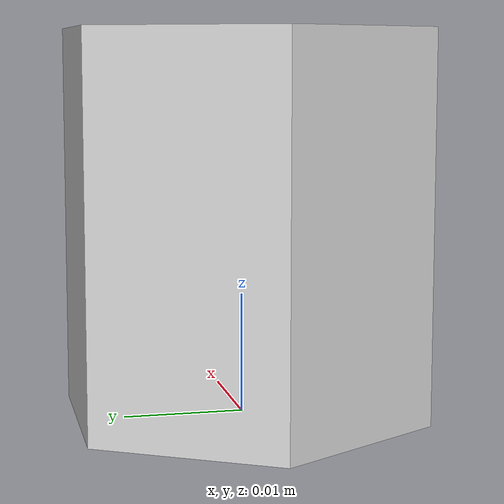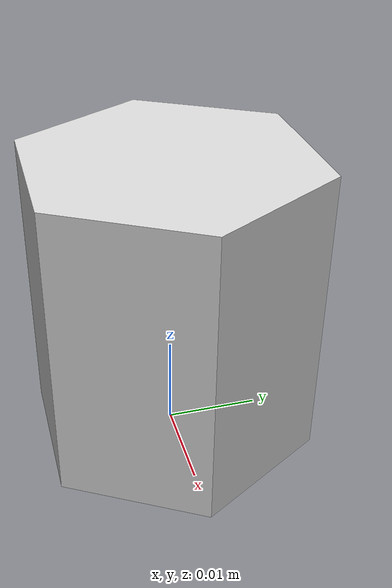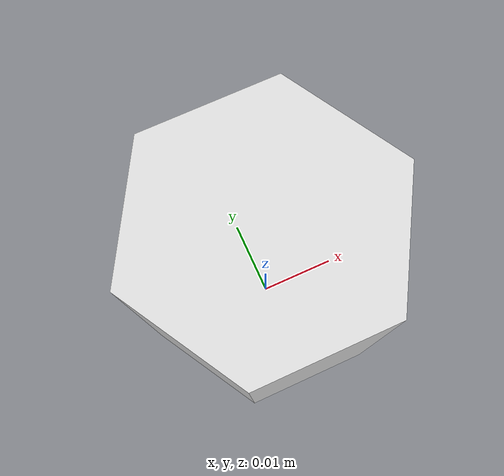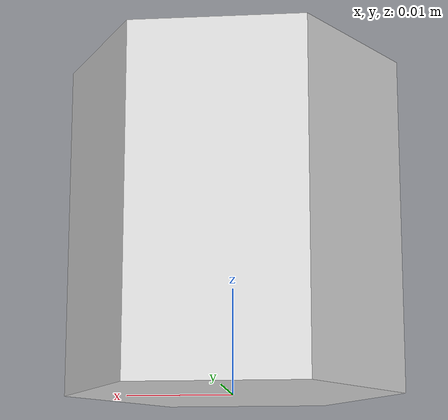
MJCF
<mujoco model="white_hex_cylinder">
  <compiler angle="radian" meshdir="assets" autolimits="true" />
  <option cone="elliptic" impratio="10" />
  <default>
    <default class="white_hex_cylinder">
      <default class="visual">
        <geom group="2" contype="0" conaffinity="0" />
      </default>
      <default class="collision">
        <geom group="3" condim="4" margin="0.001" />
      </default>
    </default>
  </default>
  <asset>
    <mesh name="white_hex_cylinder" file="hex_cylinder.obj"   />
  </asset>
  <worldbody>
    <body name="white_hex_cylinder_body" childclass="white_hex_cylinder">
      <geom type="mesh" class="visual" name="white_hex_cylinder_visual_geom" mesh="white_hex_cylinder" rgba="0.85 0.85 0.85 1" />
      <geom type="mesh" class="collision" name="white_hex_cylinder_collision_geom" mesh="white_hex_cylinder" friction="1.2 1.5 0.8" density="20" solimp="0.90 0.95" solref="0.004 1" />
      <joint type="free" name="white_hex_cylinder_joint" />
    </body>
  </worldbody>
</mujoco>
